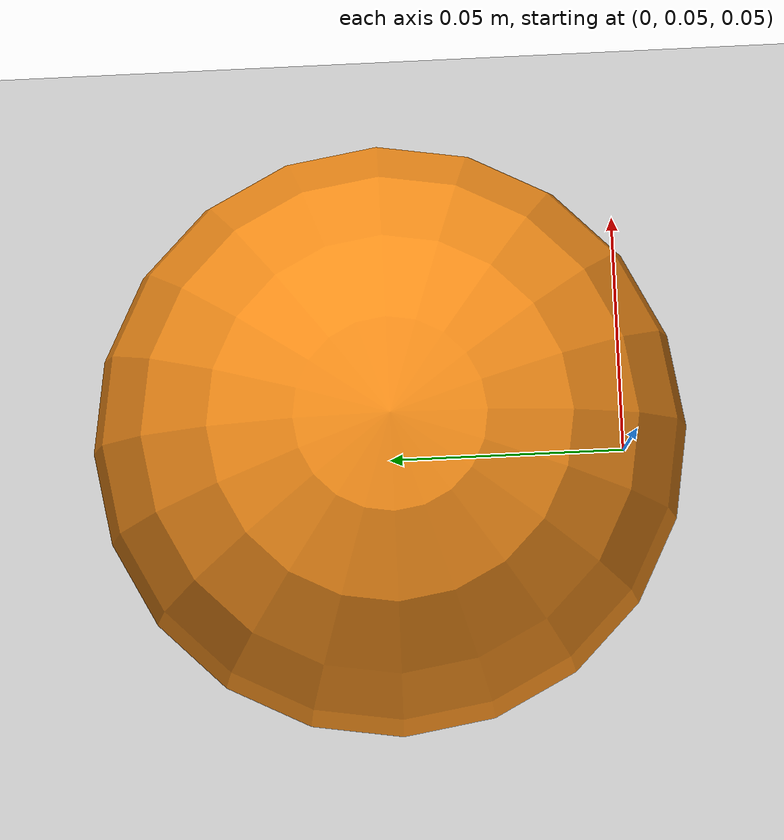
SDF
<?xml version="1.0" ?>

<sdf version="1.5">
  <world name="default">
    <!-- Literally a ground which stops objects from falling forever. -->
    <include>
      <uri>model://ground_plane</uri>
    </include>

    <!-- Adding mandarin model to our world. -->
    <include>
      <name>mandarin</name>
      <uri>model://mandarin</uri>
      <pose>0 0.1 0.1 0 0 0</pose>
    </include>
  </world>
</sdf>

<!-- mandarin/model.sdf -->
<sdf version="1.5">
  <model name="mandarin">
    <link name="link">
      <pose>0 0 0 0 0 0</pose>
      <inertial>
        <mass>0.1</mass>
        <inertia>
          <ixx>1e-9</ixx>
          <ixy>0</ixy>
          <ixz>0</ixz>
          <iyy>1e-9</iyy>
          <iyz>0</iyz>
          <izz>1e-9</izz>
        </inertia>
      </inertial>

      <collision name="collision">
      <geometry>
        <sphere>
          <radius>0.06</radius>
        </sphere>
      </geometry>
      <surface>
        <contact>
          <poissons_ratio>0.1</poissons_ratio>
          <elastic_modulus>20000</elastic_modulus>
          <ode>
            <kp>100</kp>
            <kd>10</kd>
            <max_vel>100.0</max_vel>
            <min_depth>0.001</min_depth>
          </ode>
        </contact>
      </surface>
      <friction>
        <torsional>
          <coefficient>1.0</coefficient>
          <use_patch_radius>0</use_patch_radius>
          <surface_radius>0.01</surface_radius>
        </torsional>
      </friction>
    </collision>

    <visual name="visual">
      <geometry>
        <sphere>
          <radius>0.06</radius>
        </sphere>
      </geometry>
      <material>
        <lighting>1</lighting>
          <script>
            <uri>file://media/materials/scripts/gazebo.material</uri>
            <name>Gazebo/Orange</name>
          </script>
          <shader type='pixel'/>
      </material>
    </visual>

    <velocity_decay>
      <linear>0.00</linear>
      <angular>0.1</angular>
    </velocity_decay>

    </link>
  </model>
</sdf>
